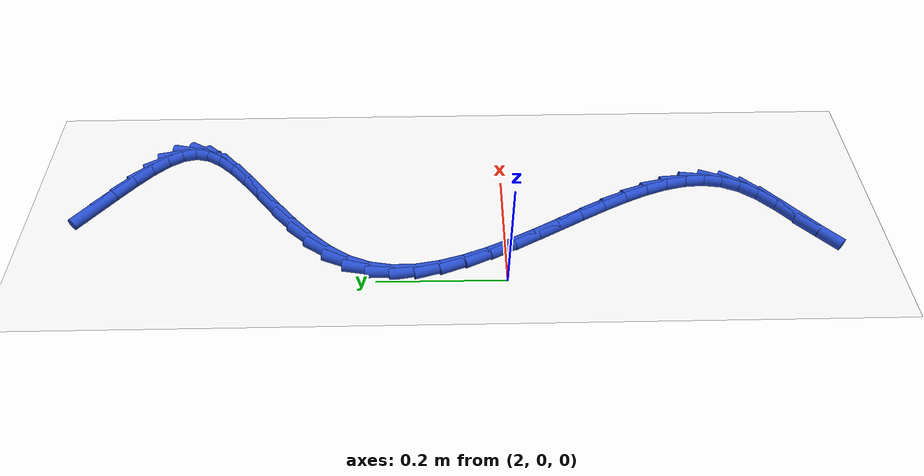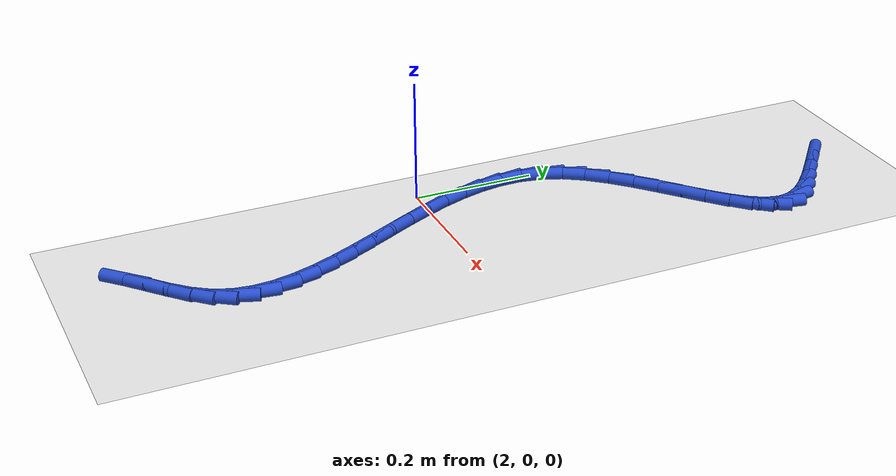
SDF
<sdf version="1.6">
 <world name="default">
  <model name="ground_plane">
   <static>1</static>
   <link name="link">
    <collision name="collision">
     <geometry><plane><normal>0 0 1</normal><size>100 100</size></plane></geometry>
     <surface><friction><ode><mu>100</mu><mu2>50</mu2></ode></friction></surface>
    </collision>
    <visual name="visual">
     <cast_shadows>0</cast_shadows>
     <geometry><plane><normal>0 0 1</normal><size>100 100</size></plane></geometry>
     <material>
      <script><uri>file://media/materials/scripts/gazebo.material</uri><name>Gazebo/WhiteGlow</name></script>
     </material>
    </visual>
   </link>
  </model>
  <model name="line">
   <link name="link_99">
    <pose>2.1455422181808097 0.6591510851260135 0.01 0 1.57 -0.692253061827931</pose>
    <collision name="collision">
     <geometry><cylinder><radius>0.01</radius><length>0.08</length></cylinder></geometry>
    </collision>
    <visual name="visual">
     <material>
      <script><name>Gazebo/Blue</name><uri>file://media/materials/scripts/gazebo.material</uri></script>
     </material>
     <geometry><cylinder><radius>0.01</radius><length>0.08</length></cylinder></geometry>
    </visual>
   </link>
   <link name="link_100">
    <pose>2.1774170173637684 0.632722701956247 0.01 0 1.57 -0.7053567619553246</pose>
    <collision name="collision">
     <geometry><cylinder><radius>0.01</radius><length>0.08</length></cylinder></geometry>
    </collision>
    <visual name="visual">
     <material>
      <script><name>Gazebo/Blue</name><uri>file://media/materials/scripts/gazebo.material</uri></script>
     </material>
     <geometry><cylinder><radius>0.01</radius><length>0.08</length></cylinder></geometry>
    </visual>
   </link>
   <link name="link_101">
    <pose>2.206800440298402 0.6077030967364242 0.01 0 1.57 -0.7561054054587878</pose>
    <collision name="collision">
     <geometry><cylinder><radius>0.01</radius><length>0.08</length></cylinder></geometry>
    </collision>
    <visual name="visual">
     <material>
      <script><name>Gazebo/Blue</name><uri>file://media/materials/scripts/gazebo.material</uri></script>
     </material>
     <geometry><cylinder><radius>0.01</radius><length>0.08</length></cylinder></geometry>
    </visual>
   </link>
   <link name="link_102">
    <pose>2.2322153248241317 0.5837351844144876 0.01 0 1.57 -0.86165910172174</pose>
    <collision name="collision">
     <geometry><cylinder><radius>0.01</radius><length>0.08</length></cylinder></geometry>
    </collision>
    <visual name="visual">
     <material>
      <script><name>Gazebo/Blue</name><uri>file://media/materials/scripts/gazebo.material</uri></script>
     </material>
     <geometry><cylinder><radius>0.01</radius><length>0.08</length></cylinder></geometry>
    </visual>
   </link>
   <link name="link_103">
    <pose>2.2521845087803762 0.5604618799383777 0.01 0 1.57 -1.053619216778411</pose>
    <collision name="collision">
     <geometry><cylinder><radius>0.01</radius><length>0.08</length></cylinder></geometry>
    </collision>
    <visual name="visual">
     <material>
      <script><name>Gazebo/Blue</name><uri>file://media/materials/scripts/gazebo.material</uri></script>
     </material>
     <geometry><cylinder><radius>0.01</radius><length>0.08</length></cylinder></geometry>
    </visual>
   </link>
   <link name="link_104">
    <pose>2.265230830006555 0.5375260982560369 0.01 0 1.57 -1.3710885054223707</pose>
    <collision name="collision">
     <geometry><cylinder><radius>0.01</radius><length>0.08</length></cylinder></geometry>
    </collision>
    <visual name="visual">
     <material>
      <script><name>Gazebo/Blue</name><uri>file://media/materials/scripts/gazebo.material</uri></script>
     </material>
     <geometry><cylinder><radius>0.01</radius><length>0.08</length></cylinder></geometry>
    </visual>
   </link>
   <link name="link_105">
    <pose>2.2698771263420876 0.5145707543154064 0.01 0 1.57 1.3583428987711614</pose>
    <collision name="collision">
     <geometry><cylinder><radius>0.01</radius><length>0.08</length></cylinder></geometry>
    </collision>
    <visual name="visual">
     <material>
      <script><name>Gazebo/Blue</name><uri>file://media/materials/scripts/gazebo.material</uri></script>
     </material>
     <geometry><cylinder><radius>0.01</radius><length>0.08</length></cylinder></geometry>
    </visual>
   </link>
   <link name="link_106">
    <pose>2.2648476001945967 0.4912544640590143 0.01 0 1.57 1.039891641243698</pose>
    <collision name="collision">
     <geometry><cylinder><radius>0.01</radius><length>0.08</length></cylinder></geometry>
    </collision>
    <visual name="visual">
     <material>
      <script><name>Gazebo/Blue</name><uri>file://media/materials/scripts/gazebo.material</uri></script>
     </material>
     <geometry><cylinder><radius>0.01</radius><length>0.08</length></cylinder></geometry>
    </visual>
   </link>
   <link name="link_107">
    <pose>2.250835627049993 0.46738938571399796 0.01 0 1.57 0.8580779639355911</pose>
    <collision name="collision">
     <geometry><cylinder><radius>0.01</radius><length>0.08</length></cylinder></geometry>
    </collision>
    <visual name="visual">
     <material>
      <script><name>Gazebo/Blue</name><uri>file://media/materials/scripts/gazebo.material</uri></script>
     </material>
     <geometry><cylinder><radius>0.01</radius><length>0.08</length></cylinder></geometry>
    </visual>
   </link>
   <link name="link_108">
    <pose>2.2296482462438987 0.4428745131918017 0.01 0 1.57 0.7607268860427313</pose>
    <collision name="collision">
     <geometry><cylinder><radius>0.01</radius><length>0.08</length></cylinder></geometry>
    </collision>
    <visual name="visual">
     <material>
      <script><name>Gazebo/Blue</name><uri>file://media/materials/scripts/gazebo.material</uri></script>
     </material>
     <geometry><cylinder><radius>0.01</radius><length>0.08</length></cylinder></geometry>
    </visual>
   </link>
   <link name="link_109">
    <pose>2.2031051348995776 0.41760982580977996 0.01 0 1.57 0.7149617274379562</pose>
    <collision name="collision">
     <geometry><cylinder><radius>0.01</radius><length>0.08</length></cylinder></geometry>
    </collision>
    <visual name="visual">
     <material>
      <script><name>Gazebo/Blue</name><uri>file://media/materials/scripts/gazebo.material</uri></script>
     </material>
     <geometry><cylinder><radius>0.01</radius><length>0.08</length></cylinder></geometry>
    </visual>
   </link>
   <link name="link_110">
    <pose>2.173025970140291 0.3914953028852851 0.01 0 1.57 0.705190580057764</pose>
    <collision name="collision">
     <geometry><cylinder><radius>0.01</radius><length>0.08</length></cylinder></geometry>
    </collision>
    <visual name="visual">
     <material>
      <script><name>Gazebo/Blue</name><uri>file://media/materials/scripts/gazebo.material</uri></script>
     </material>
     <geometry><cylinder><radius>0.01</radius><length>0.08</length></cylinder></geometry>
    </visual>
   </link>
   <link name="link_111">
    <pose>2.141230429089307 0.36443092373567193 0.01 0 1.57 0.7256433739993031</pose>
    <collision name="collision">
     <geometry><cylinder><radius>0.01</radius><length>0.08</length></cylinder></geometry>
    </collision>
    <visual name="visual">
     <material>
      <script><name>Gazebo/Blue</name><uri>file://media/materials/scripts/gazebo.material</uri></script>
     </material>
     <geometry><cylinder><radius>0.01</radius><length>0.08</length></cylinder></geometry>
    </visual>
   </link>
   <link name="link_112">
    <pose>2.1095381888698834 0.33631666767829277 0.01 0 1.57 0.7768420552489979</pose>
    <collision name="collision">
     <geometry><cylinder><radius>0.01</radius><length>0.08</length></cylinder></geometry>
    </collision>
    <visual name="visual">
     <material>
      <script><name>Gazebo/Blue</name><uri>file://media/materials/scripts/gazebo.material</uri></script>
     </material>
     <geometry><cylinder><radius>0.01</radius><length>0.08</length></cylinder></geometry>
    </visual>
   </link>
   <link name="link_113">
    <pose>2.0797689266052872 0.30705251403050215 0.01 0 1.57 0.8645991545026752</pose>
    <collision name="collision">
     <geometry><cylinder><radius>0.01</radius><length>0.08</length></cylinder></geometry>
    </collision>
    <visual name="visual">
     <material>
      <script><name>Gazebo/Blue</name><uri>file://media/materials/scripts/gazebo.material</uri></script>
     </material>
     <geometry><cylinder><radius>0.01</radius><length>0.08</length></cylinder></geometry>
    </visual>
   </link>
   <link name="link_114">
    <pose>2.053742319418782 0.27653844210965284 0.01 0 1.57 0.9998971449146882</pose>
    <collision name="collision">
     <geometry><cylinder><radius>0.01</radius><length>0.08</length></cylinder></geometry>
    </collision>
    <visual name="visual">
     <material>
      <script><name>Gazebo/Blue</name><uri>file://media/materials/scripts/gazebo.material</uri></script>
     </material>
     <geometry><cylinder><radius>0.01</radius><length>0.08</length></cylinder></geometry>
    </visual>
   </link>
   <link name="link_115">
    <pose>2.03327804443363 0.24467443123309907 0.01 0 1.57 1.1920312751150997</pose>
    <collision name="collision">
     <geometry><cylinder><radius>0.01</radius><length>0.08</length></cylinder></geometry>
    </collision>
    <visual name="visual">
     <material>
      <script><name>Gazebo/Blue</name><uri>file://media/materials/scripts/gazebo.material</uri></script>
     </material>
     <geometry><cylinder><radius>0.01</radius><length>0.08</length></cylinder></geometry>
    </visual>
   </link>
   <link name="link_116">
    <pose>2.0200272232177423 0.21137936014641642 0.01 0 1.57 1.3989460325028158</pose>
    <collision name="collision">
     <geometry><cylinder><radius>0.01</radius><length>0.08</length></cylinder></geometry>
    </collision>
    <visual name="visual">
     <material>
      <script><name>Gazebo/Blue</name><uri>file://media/materials/scripts/gazebo.material</uri></script>
     </material>
     <geometry><cylinder><radius>0.01</radius><length>0.08</length></cylinder></geometry>
    </visual>
   </link>
   <link name="link_117">
    <pose>2.0140175907461177 0.17675413113231905 0.01 0 1.57 -1.5609462344996374</pose>
    <collision name="collision">
     <geometry><cylinder><radius>0.01</radius><length>0.08</length></cylinder></geometry>
    </collision>
    <visual name="visual">
     <material>
      <script><name>Gazebo/Blue</name><uri>file://media/materials/scripts/gazebo.material</uri></script>
     </material>
     <geometry><cylinder><radius>0.01</radius><length>0.08</length></cylinder></geometry>
    </visual>
   </link>
   <link name="link_118">
    <pose>2.0143697702600987 0.14100135711168074 0.01 0 1.57 -1.4132989437437526</pose>
    <collision name="collision">
     <geometry><cylinder><radius>0.01</radius><length>0.08</length></cylinder></geometry>
    </collision>
    <visual name="visual">
     <material>
      <script><name>Gazebo/Blue</name><uri>file://media/materials/scripts/gazebo.material</uri></script>
     </material>
     <geometry><cylinder><radius>0.01</radius><length>0.08</length></cylinder></geometry>
    </visual>
   </link>
   <link name="link_119">
    <pose>2.020194479355015 0.10432476168395853 0.01 0 1.57 -1.2993533974882552</pose>
    <collision name="collision">
     <geometry><cylinder><radius>0.01</radius><length>0.08</length></cylinder></geometry>
    </collision>
    <visual name="visual">
     <material>
      <script><name>Gazebo/Blue</name><uri>file://media/materials/scripts/gazebo.material</uri></script>
     </material>
     <geometry><cylinder><radius>0.01</radius><length>0.08</length></cylinder></geometry>
    </visual>
   </link>
   <link name="link_120">
    <pose>2.030602435626193 0.06692806844861009 0.01 0 1.57 -1.2146987012249784</pose>
    <collision name="collision">
     <geometry><cylinder><radius>0.01</radius><length>0.08</length></cylinder></geometry>
    </collision>
    <visual name="visual">
     <material>
      <script><name>Gazebo/Blue</name><uri>file://media/materials/scripts/gazebo.material</uri></script>
     </material>
     <geometry><cylinder><radius>0.01</radius><length>0.08</length></cylinder></geometry>
    </visual>
   </link>
   <link name="link_121">
    <pose>2.0447043566689644 0.029015001005093313 0.01 0 1.57 -1.1543779646380863</pose>
    <collision name="collision">
     <geometry><cylinder><radius>0.01</radius><length>0.08</length></cylinder></geometry>
    </collision>
    <visual name="visual">
     <material>
      <script><name>Gazebo/Blue</name><uri>file://media/materials/scripts/gazebo.material</uri></script>
     </material>
     <geometry><cylinder><radius>0.01</radius><length>0.08</length></cylinder></geometry>
    </visual>
   </link>
   <link name="link_122">
    <pose>2.0616109600786565 -0.009210717047134918 0.01 0 1.57 -1.11438106590221</pose>
    <collision name="collision">
     <geometry><cylinder><radius>0.01</radius><length>0.08</length></cylinder></geometry>
    </collision>
    <visual name="visual">
     <material>
      <script><name>Gazebo/Blue</name><uri>file://media/materials/scripts/gazebo.material</uri></script>
     </material>
     <geometry><cylinder><radius>0.01</radius><length>0.08</length></cylinder></geometry>
    </visual>
   </link>
   <link name="link_123">
    <pose>2.080432963450597 -0.04754536210861493 0.01 0 1.57 -1.0920307335641353</pose>
    <collision name="collision">
     <geometry><cylinder><radius>0.01</radius><length>0.08</length></cylinder></geometry>
    </collision>
    <visual name="visual">
     <material>
      <script><name>Gazebo/Blue</name><uri>file://media/materials/scripts/gazebo.material</uri></script>
     </material>
     <geometry><cylinder><radius>0.01</radius><length>0.08</length></cylinder></geometry>
    </visual>
   </link>
   <link name="link_124">
    <pose>2.100281084380116 -0.08578521057988982 0.01 0 1.57 -1.0859916123036226</pose>
    <collision name="collision">
     <geometry><cylinder><radius>0.01</radius><length>0.08</length></cylinder></geometry>
    </collision>
    <visual name="visual">
     <material>
      <script><name>Gazebo/Blue</name><uri>file://media/materials/scripts/gazebo.material</uri></script>
     </material>
     <geometry><cylinder><radius>0.01</radius><length>0.08</length></cylinder></geometry>
    </visual>
   </link>
   <link name="link_125">
    <pose>2.120266040462542 -0.1237265388615018 0.01 0 1.57 -1.0962478024556572</pose>
    <collision name="collision">
     <geometry><cylinder><radius>0.01</radius><length>0.08</length></cylinder></geometry>
    </collision>
    <visual name="visual">
     <material>
      <script><name>Gazebo/Blue</name><uri>file://media/materials/scripts/gazebo.material</uri></script>
     </material>
     <geometry><cylinder><radius>0.01</radius><length>0.08</length></cylinder></geometry>
    </visual>
   </link>
   <link name="link_126">
    <pose>2.1394985492932035 -0.16116562335399404 0.01 0 1.57 -1.124186489660028</pose>
    <collision name="collision">
     <geometry><cylinder><radius>0.01</radius><length>0.08</length></cylinder></geometry>
    </collision>
    <visual name="visual">
     <material>
      <script><name>Gazebo/Blue</name><uri>file://media/materials/scripts/gazebo.material</uri></script>
     </material>
     <geometry><cylinder><radius>0.01</radius><length>0.08</length></cylinder></geometry>
    </visual>
   </link>
   <link name="link_127">
    <pose>2.1570893284674297 -0.19789874045790673 0.01 0 1.57 -1.1728378814110674</pose>
    <collision name="collision">
     <geometry><cylinder><radius>0.01</radius><length>0.08</length></cylinder></geometry>
    </collision>
    <visual name="visual">
     <material>
      <script><name>Gazebo/Blue</name><uri>file://media/materials/scripts/gazebo.material</uri></script>
     </material>
     <geometry><cylinder><radius>0.01</radius><length>0.08</length></cylinder></geometry>
    </visual>
   </link>
   <link name="link_128">
    <pose>2.1721490955805476 -0.23372216657378303 0.01 0 1.57 -1.247245590351245</pose>
    <collision name="collision">
     <geometry><cylinder><radius>0.01</radius><length>0.08</length></cylinder></geometry>
    </collision>
    <visual name="visual">
     <material>
      <script><name>Gazebo/Blue</name><uri>file://media/materials/scripts/gazebo.material</uri></script>
     </material>
     <geometry><cylinder><radius>0.01</radius><length>0.08</length></cylinder></geometry>
    </visual>
   </link>
   <link name="link_129">
    <pose>2.183788568227887 -0.26843217810216513 0.01 0 1.57 -1.3547184155974614</pose>
    <collision name="collision">
     <geometry><cylinder><radius>0.01</radius><length>0.08</length></cylinder></geometry>
    </collision>
    <visual name="visual">
     <material>
      <script><name>Gazebo/Blue</name><uri>file://media/materials/scripts/gazebo.material</uri></script>
     </material>
     <geometry><cylinder><radius>0.01</radius><length>0.08</length></cylinder></geometry>
    </visual>
   </link>
   <link name="link_130">
    <pose>2.1911184640047776 -0.30182505144359534 0.01 0 1.57 -1.5040333821217977</pose>
    <collision name="collision">
     <geometry><cylinder><radius>0.01</radius><length>0.08</length></cylinder></geometry>
    </collision>
    <visual name="visual">
     <material>
      <script><name>Gazebo/Blue</name><uri>file://media/materials/scripts/gazebo.material</uri></script>
     </material>
     <geometry><cylinder><radius>0.01</radius><length>0.08</length></cylinder></geometry>
    </visual>
   </link>
   <link name="link_131">
    <pose>2.1932495005065467 -0.33369706299861646 0.01 0 1.57 1.440283962415709</pose>
    <collision name="collision">
     <geometry><cylinder><radius>0.01</radius><length>0.08</length></cylinder></geometry>
    </collision>
    <visual name="visual">
     <material>
      <script><name>Gazebo/Blue</name><uri>file://media/materials/scripts/gazebo.material</uri></script>
     </material>
     <geometry><cylinder><radius>0.01</radius><length>0.08</length></cylinder></geometry>
    </visual>
   </link>
   <link name="link_132">
    <pose>2.189292395328523 -0.363844489167769 0.01 0 1.57 1.2011237043590004</pose>
    <collision name="collision">
     <geometry><cylinder><radius>0.01</radius><length>0.08</length></cylinder></geometry>
    </collision>
    <visual name="visual">
     <material>
      <script><name>Gazebo/Blue</name><uri>file://media/materials/scripts/gazebo.material</uri></script>
     </material>
     <geometry><cylinder><radius>0.01</radius><length>0.08</length></cylinder></geometry>
    </visual>
   </link>
   <link name="link_133">
    <pose>2.1783578660660354 -0.3920636063515962 0.01 0 1.57 0.9608869587164686</pose>
    <collision name="collision">
     <geometry><cylinder><radius>0.01</radius><length>0.08</length></cylinder></geometry>
    </collision>
    <visual name="visual">
     <material>
      <script><name>Gazebo/Blue</name><uri>file://media/materials/scripts/gazebo.material</uri></script>
     </material>
     <geometry><cylinder><radius>0.01</radius><length>0.08</length></cylinder></geometry>
    </visual>
   </link>
   <link name="link_134">
    <pose>2.160013191725199 -0.4183158892096479 0.01 0 1.57 0.8042579812972901</pose>
    <collision name="collision">
     <geometry><cylinder><radius>0.01</radius><length>0.08</length></cylinder></geometry>
    </collision>
    <visual name="visual">
     <material>
      <script><name>Gazebo/Blue</name><uri>file://media/materials/scripts/gazebo.material</uri></script>
     </material>
     <geometry><cylinder><radius>0.01</radius><length>0.08</length></cylinder></geometry>
    </visual>
   </link>
   <link name="link_135">
    <pose>2.1359305941386246 -0.4433244468323163 0.01 0 1.57 0.731196468531215</pose>
    <collision name="collision">
     <geometry><cylinder><radius>0.01</radius><length>0.08</length></cylinder></geometry>
    </collision>
    <visual name="visual">
     <material>
      <script><name>Gazebo/Blue</name><uri>file://media/materials/scripts/gazebo.material</uri></script>
     </material>
     <geometry><cylinder><radius>0.01</radius><length>0.08</length></cylinder></geometry>
    </visual>
   </link>
   <link name="link_136">
    <pose>2.1083885204936292 -0.4680317396848505 0.01 0 1.57 0.7230702527751499</pose>
    <collision name="collision">
     <geometry><cylinder><radius>0.01</radius><length>0.08</length></cylinder></geometry>
    </collision>
    <visual name="visual">
     <material>
      <script><name>Gazebo/Blue</name><uri>file://media/materials/scripts/gazebo.material</uri></script>
     </material>
     <geometry><cylinder><radius>0.01</radius><length>0.08</length></cylinder></geometry>
    </visual>
   </link>
   <link name="link_137">
    <pose>2.0796654737808447 -0.4933802484238945 0.01 0 1.57 0.7726909944728622</pose>
    <collision name="collision">
     <geometry><cylinder><radius>0.01</radius><length>0.08</length></cylinder></geometry>
    </collision>
    <visual name="visual">
     <material>
      <script><name>Gazebo/Blue</name><uri>file://media/materials/scripts/gazebo.material</uri></script>
     </material>
     <geometry><cylinder><radius>0.01</radius><length>0.08</length></cylinder></geometry>
    </visual>
   </link>
  </model>
 </world>
</sdf>
